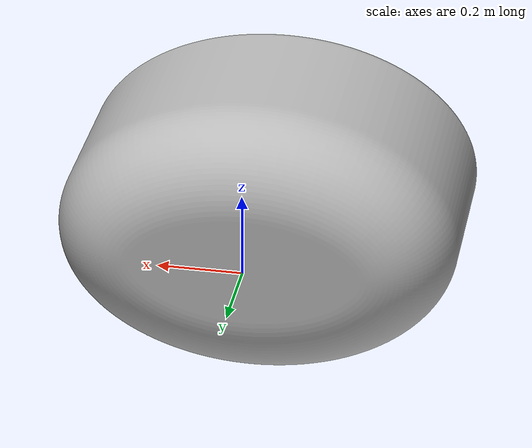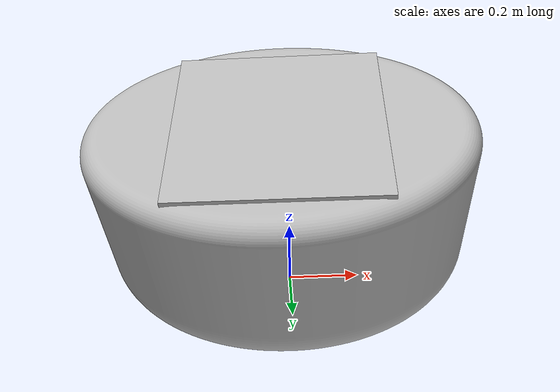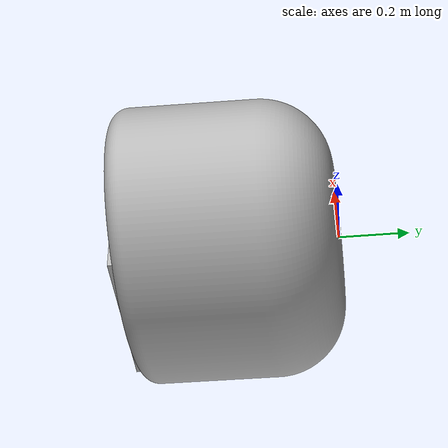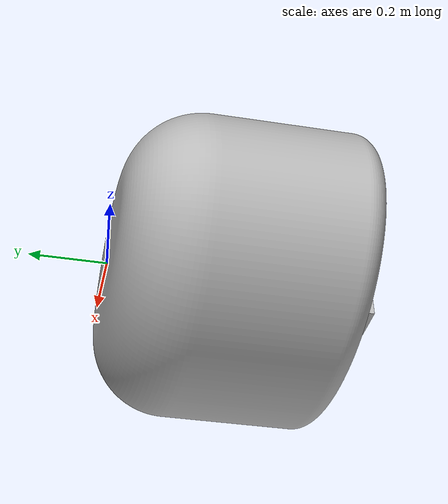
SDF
<?xml version="1.0"?>
<sdf version="1.5">
  <model name="soap_camera_4">
    <pose>0 0 0 0 0 0</pose>
    <static>false</static>

    <link name="camera_link_base">

      <visual name="visual">
        <geometry>
          <mesh>
            <uri>model://soap_camera_4/meshes/soap_camera_4.dae</uri>
          </mesh>
        </geometry>
      </visual>

      <collision name="collision">
        <geometry>
          <mesh>
            <uri>model://soap_camera_4/meshes/soap_camera_4.dae</uri>
          </mesh>
        </geometry>
      </collision>

      <sensor name="camera_link_camera" type="camera">
        <pose>0 0 0 0 0 1.570796327</pose>

        <camera>
          <horizontal_fov>1.047197551</horizontal_fov>
          <image>
            <width>1920</width>
            <height>1080</height>
            <format>R8G8B8</format>
          </image>
        </camera>

        <always_on>1</always_on>
        <update_rate>60</update_rate>
        <visualize>true</visualize>

        <plugin name="camera_controller" filename="libgazebo_ros_camera.so">
          <cameraName>camera</cameraName>
          <imageTopicName>image_raw</imageTopicName>
          <cameraInfoTopicName>camera_info</cameraInfoTopicName>
          <odometryTopic>odom</odometryTopic>
          <odometryFrame>odom</odometryFrame>
          <frameName>camera_link_optical</frameName>
        </plugin>

      </sensor>

    </link>

    <link name="camera_box">
      <pose>0 -0.51 0 0 0 0</pose>
      <visual name="visual">
        <geometry>
          <box>
            <size>0.5 0.2 0.5</size>
          </box>
        </geometry>
      </visual>

      <collision name="collision">
        <geometry>
          <box>
            <size>0.5 0.2 0.5</size>
          </box>
        </geometry>
      </collision>

    </link>

    <joint name="camera_joint" type="fixed">
      <child>camera_box</child>
      <parent>camera_link_base</parent>
    </joint>

    <!-- model plugin -->
    <plugin name="camera_move" filename="libgazebo_ros_planar_move.so">
      <commandTopic>camera_cmd_vel</commandTopic>
      <odometryTopic>odom</odometryTopic>
      <odometryFrame>odom</odometryFrame>                         <!-- header frame id -->
      <robotBaseFrame>camera_link_base</robotBaseFrame>           <!-- child  frame id -->
    </plugin>

  </model>
</sdf>
